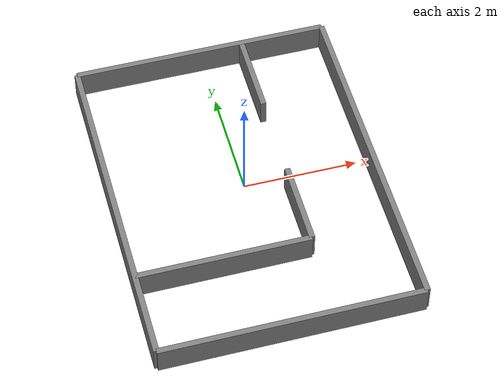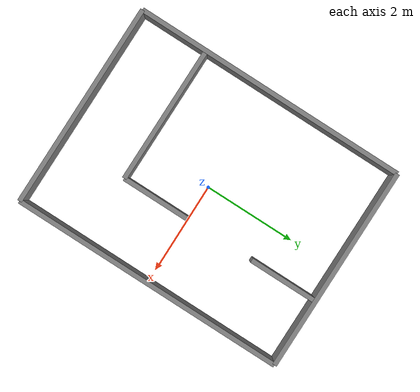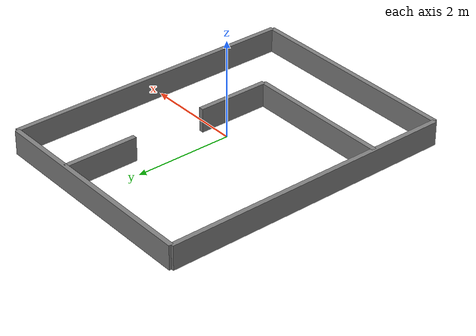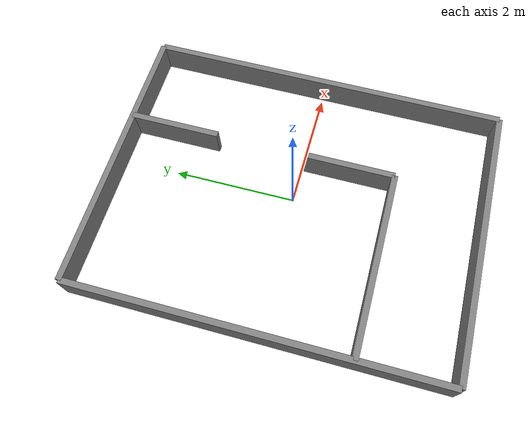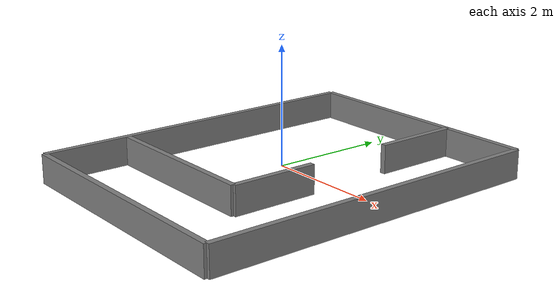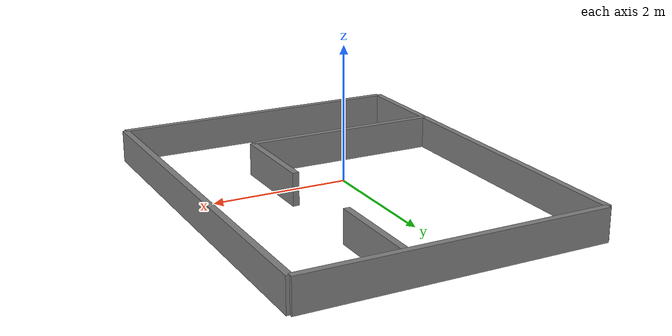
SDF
<?xml version="1.0" ?>
<sdf version='1.10'>
  <world name='project_world'>
    <!-- Given Physics -->
    <physics name="1ms" type="ode">
    <max_step_size>0.003</max_step_size>
    <real_time_update_rate>1000.0</real_time_update_rate>
    <real_time_factor>1.0</real_time_factor> </physics>

    <!-- Given "Standard Gazebo system plugins" -->
    <plugin filename="gz-sim-physics-system"
    name="gz::sim::systems::Physics"/>
    <plugin filename="gz-sim-user-commands-system"
    name="gz::sim::systems::UserCommands"/>
    <plugin filename="gz-sim-scene-broadcaster-system"
    name="gz::sim::systems::SceneBroadcaster"/>

    <scene>
      <ambient>0.4 0.4 0.4 1</ambient>
      <background>0.7 0.7 0.7 1</background>
      <shadows>true</shadows>
    </scene>

    <!-- Perimeter (15' wide x 20' tall) -->
    <!-- Top wall -->
    <model name='wall_outer_north'>
      <static>true</static>
      <pose>0 3.048 0 0 0 0</pose>
      <link name='link'>
        <collision name='collision'>
          <geometry><box><size>4.572 0.10 0.50</size></box></geometry>
        </collision>
        <visual name='visual'>
          <geometry><box><size>4.572 0.10 0.50</size></box></geometry>
          <material>
            <ambient>0.5 0.5 0.5 1</ambient>
            <diffuse>0.5 0.5 0.5 1</diffuse>
          </material>
        </visual>
      </link>
    </model>

    <!-- Bottom wall -->
    <model name='wall_outer_south'>
      <static>true</static>
      <pose>0 -3.048 0 0 0 0</pose>
      <link name='link'>
        <collision name='collision'>
          <geometry><box><size>4.572 0.10 0.50</size></box></geometry>
        </collision>
        <visual name='visual'>
          <geometry><box><size>4.572 0.10 0.50</size></box></geometry>
          <material>
            <ambient>0.5 0.5 0.5 1</ambient>
            <diffuse>0.5 0.5 0.5 1</diffuse>
          </material>
        </visual>
      </link>
    </model>

    <!-- Left wall -->
    <model name='wall_outer_west'>
      <static>true</static>
      <pose>-2.286 0 0 0 0 0</pose>
      <link name='link'>
        <collision name='collision'>
          <geometry><box><size>0.10 6.096 0.50</size></box></geometry>
        </collision>
        <visual name='visual'>
          <geometry><box><size>0.10 6.096 0.50</size></box></geometry>
          <material>
            <ambient>0.5 0.5 0.5 1</ambient>
            <diffuse>0.5 0.5 0.5 1</diffuse>
          </material>
        </visual>
      </link>
    </model>

    <!-- Right wall -->
    <model name='wall_outer_east'>
      <static>true</static>
      <pose>2.286 0 0 0 0 0</pose>
      <link name='link'>
        <collision name='collision'>
          <geometry><box><size>0.10 6.096 0.50</size></box></geometry>
        </collision>
        <visual name='visual'>
          <geometry><box><size>0.10 6.096 0.50</size></box></geometry>
          <material>
            <ambient>0.5 0.5 0.5 1</ambient>
            <diffuse>0.5 0.5 0.5 1</diffuse>
          </material>
        </visual>
      </link>
    </model>

    <!-- Room walls (10' wide, 15' tall) -->
    <!-- Room bottom wall -->
    <model name='wall_room_south'>
      <static>true</static>
      <pose>-0.762 -1.524 0 0 0 0</pose>
      <link name='link'>
        <collision name='collision'>
          <geometry><box><size>3.048 0.10 0.50</size></box></geometry>
        </collision>
        <visual name='visual'>
          <geometry><box><size>3.048 0.10 0.50</size></box></geometry>
          <material>
            <ambient>0.5 0.5 0.5 1</ambient>
            <diffuse>0.5 0.5 0.5 1</diffuse>
          </material>
        </visual>
      </link>
    </model>

    <!-- Room right wall above the doorway -->
    <model name='wall_room_east_upper'>
      <static>true</static>
      <pose>0.762 2.286 0 0 0 0</pose>
      <link name='link'>
        <collision name='collision'>
          <geometry><box><size>0.10 1.524 0.50</size></box></geometry>
        </collision>
        <visual name='visual'>
          <geometry><box><size>0.10 1.524 0.50</size></box></geometry>
          <material>
            <ambient>0.5 0.5 0.5 1</ambient>
            <diffuse>0.5 0.5 0.5 1</diffuse>
          </material>
        </visual>
      </link>
    </model>

    <!-- Room right wall segment below the doorway -->
    <model name='wall_room_east_lower'>
      <static>true</static>
      <pose>0.762 -0.762 0 0 0 0</pose>
      <link name='link'>
        <collision name='collision'>
          <geometry><box><size>0.10 1.524 0.50</size></box></geometry>
        </collision>
        <visual name='visual'>
          <geometry><box><size>0.10 1.524 0.50</size></box></geometry>
          <material>
            <ambient>0.5 0.5 0.5 1</ambient>
            <diffuse>0.5 0.5 0.5 1</diffuse>
          </material>
        </visual>
      </link>
    </model>

    <!-- Sun -->
    <light name='sun' type='directional'>
      <pose>0 0 10 0 0 0</pose>
      <cast_shadows>true</cast_shadows>
      <intensity>1</intensity>
      <direction>-0.5 0.1 -0.9</direction>
      <diffuse>0.8 0.8 0.8 1</diffuse>
      <specular>0.2 0.2 0.2 1</specular>
      <attenuation>
        <range>1000</range>
        <linear>0.01</linear>
        <constant>0.9</constant>
        <quadratic>0.001</quadratic>
      </attenuation>
      <spot>
        <inner_angle>0</inner_angle>
        <outer_angle>0</outer_angle>
        <falloff>0</falloff>
      </spot>
    </light>

  </world>
</sdf>
